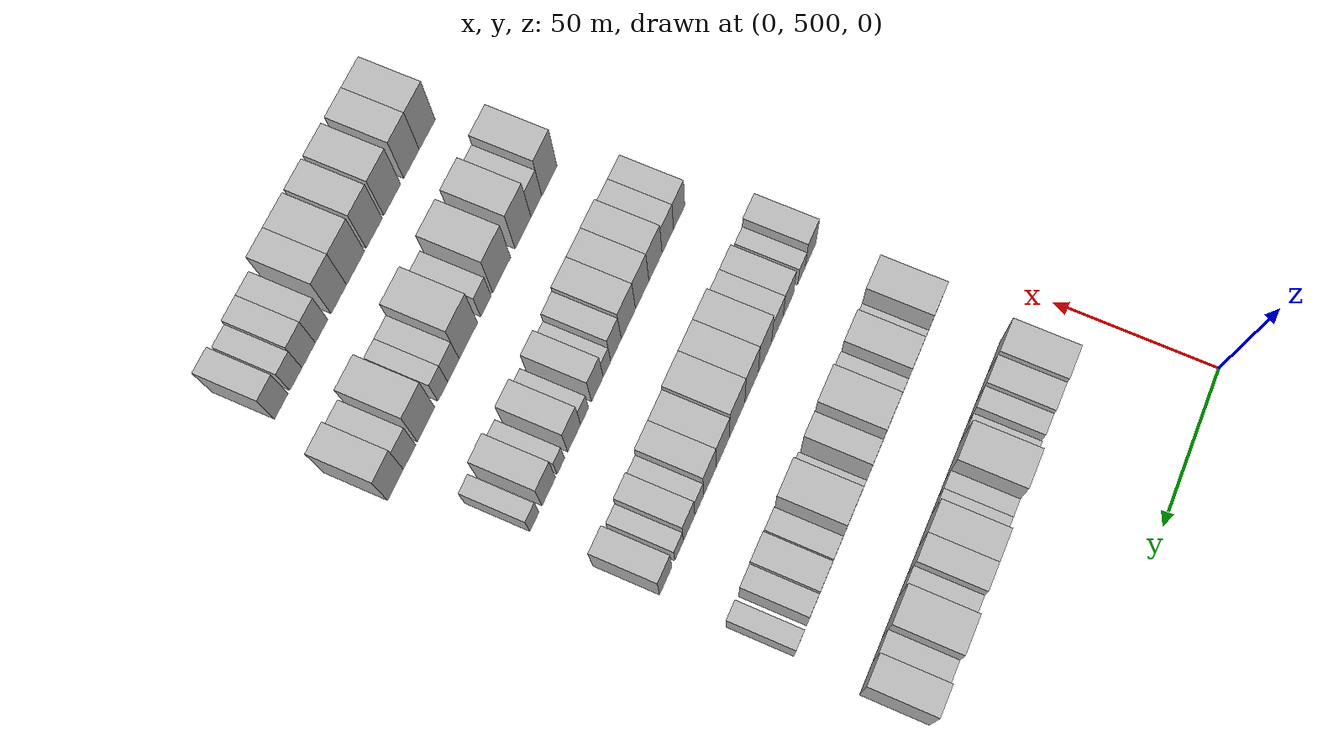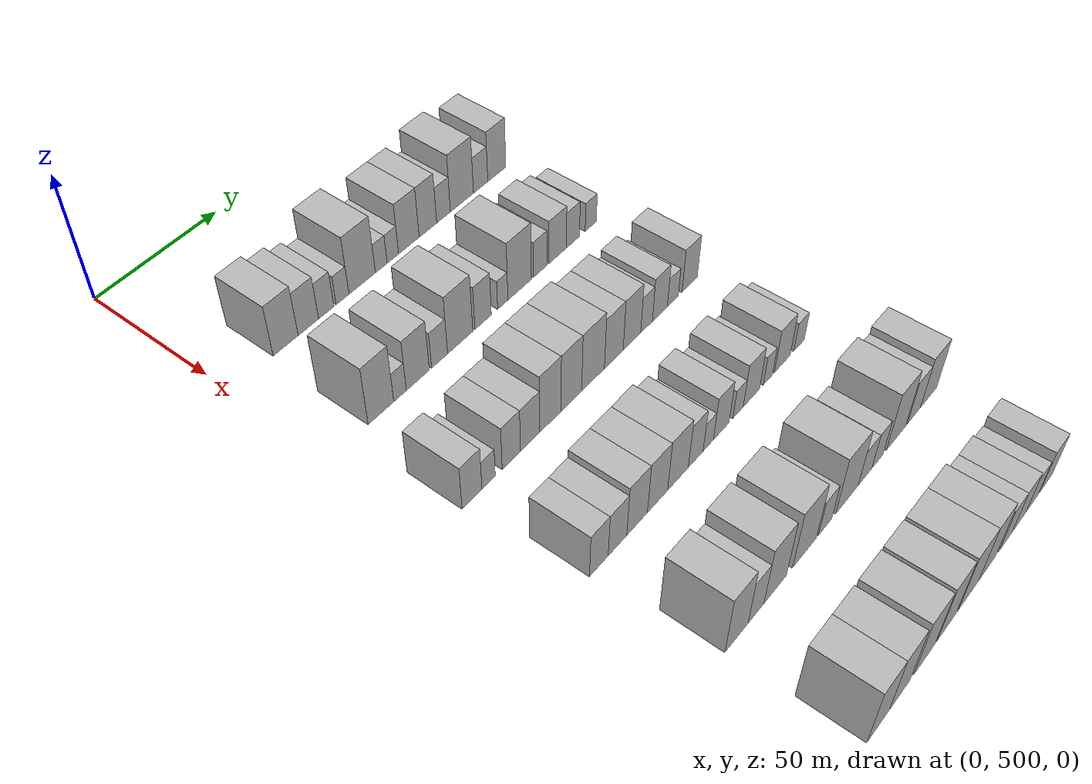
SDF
<sdf version="1.6">
 <world name="default">
  <model name="building_129">
   <static>1</static>
   <pose>50.0000 522.5964 0 0.000000 0.000000 0.000000</pose>
   <link name="link">
    <pose>0 0 10.50 0 0 0</pose>
    <collision name="collision"><geometry><box><size>20.0000 10.4210 21.0000</size></box></geometry></collision>
    <visual name="visual">
     <cast_shadows>0</cast_shadows>
     <geometry><box><size>20.0000 10.4210 21.0000</size></box></geometry>
     <material>
      <script>
       <uri>model://HANNAS_wall/materials/scripts</uri>
       <uri>model://HANNAS_wall/materials/textures</uri>
       <name>vrc/HANNAS_wall</name>
      </script>
     </material>
    </visual>
   </link>
  </model>
  <model name="building_130">
   <static>1</static>
   <pose>50.0000 532.1601 0 0.000000 0.000000 0.000000</pose>
   <link name="link">
    <pose>0 0 9.00 0 0 0</pose>
    <collision name="collision"><geometry><box><size>20.0000 8.7064 18.0000</size></box></geometry></collision>
    <visual name="visual">
     <cast_shadows>0</cast_shadows>
     <geometry><box><size>20.0000 8.7064 18.0000</size></box></geometry>
     <material>
      <script>
       <uri>model://HANNAS_wall/materials/scripts</uri>
       <uri>model://HANNAS_wall/materials/textures</uri>
       <name>vrc/HANNAS_wall</name>
      </script>
     </material>
    </visual>
   </link>
  </model>
  <model name="building_131">
   <static>1</static>
   <pose>50.0000 539.8274 0 0.000000 0.000000 0.000000</pose>
   <link name="link">
    <pose>0 0 7.50 0 0 0</pose>
    <collision name="collision"><geometry><box><size>20.0000 6.6281 15.0000</size></box></geometry></collision>
    <visual name="visual">
     <cast_shadows>0</cast_shadows>
     <geometry><box><size>20.0000 6.6281 15.0000</size></box></geometry>
     <material>
      <script>
       <uri>model://HANNAS_wall/materials/scripts</uri>
       <uri>model://HANNAS_wall/materials/textures</uri>
       <name>vrc/HANNAS_wall</name>
      </script>
     </material>
    </visual>
   </link>
  </model>
  <model name="building_132">
   <static>1</static>
   <pose>50.0000 546.9651 0 0.000000 0.000000 0.000000</pose>
   <link name="link">
    <pose>0 0 6.00 0 0 0</pose>
    <collision name="collision"><geometry><box><size>20.0000 5.6472 12.0000</size></box></geometry></collision>
    <visual name="visual">
     <cast_shadows>0</cast_shadows>
     <geometry><box><size>20.0000 5.6472 12.0000</size></box></geometry>
     <material>
      <script>
       <uri>model://HANNAS_wall/materials/scripts</uri>
       <uri>model://HANNAS_wall/materials/textures</uri>
       <name>vrc/HANNAS_wall</name>
      </script>
     </material>
    </visual>
   </link>
  </model>
  <model name="building_133">
   <static>1</static>
   <pose>50.0000 555.7338 0 0.000000 0.000000 0.000000</pose>
   <link name="link">
    <pose>0 0 12.00 0 0 0</pose>
    <collision name="collision"><geometry><box><size>20.0000 11.8901 24.0000</size></box></geometry></collision>
    <visual name="visual">
     <cast_shadows>0</cast_shadows>
     <geometry><box><size>20.0000 11.8901 24.0000</size></box></geometry>
     <material>
      <script>
       <uri>model://HANNAS_wall/materials/scripts</uri>
       <uri>model://HANNAS_wall/materials/textures</uri>
       <name>vrc/HANNAS_wall</name>
      </script>
     </material>
    </visual>
   </link>
  </model>
  <model name="building_134">
   <static>1</static>
   <pose>50.0000 564.3803 0 0.000000 0.000000 0.000000</pose>
   <link name="link">
    <pose>0 0 6.00 0 0 0</pose>
    <collision name="collision"><geometry><box><size>20.0000 5.4030 12.0000</size></box></geometry></collision>
    <visual name="visual">
     <cast_shadows>0</cast_shadows>
     <geometry><box><size>20.0000 5.4030 12.0000</size></box></geometry>
     <material>
      <script>
       <uri>model://HANNAS_wall/materials/scripts</uri>
       <uri>model://HANNAS_wall/materials/textures</uri>
       <name>vrc/HANNAS_wall</name>
      </script>
     </material>
    </visual>
   </link>
  </model>
  <model name="building_135">
   <static>1</static>
   <pose>50.0000 569.7491 0 0.000000 0.000000 0.000000</pose>
   <link name="link">
    <pose>0 0 6.00 0 0 0</pose>
    <collision name="collision"><geometry><box><size>20.0000 5.3346 12.0000</size></box></geometry></collision>
    <visual name="visual">
     <cast_shadows>0</cast_shadows>
     <geometry><box><size>20.0000 5.3346 12.0000</size></box></geometry>
     <material>
      <script>
       <uri>model://HANNAS_wall/materials/scripts</uri>
       <uri>model://HANNAS_wall/materials/textures</uri>
       <name>vrc/HANNAS_wall</name>
      </script>
     </material>
    </visual>
   </link>
  </model>
  <model name="building_136">
   <static>1</static>
   <pose>50.0000 577.2828 0 0.000000 0.000000 0.000000</pose>
   <link name="link">
    <pose>0 0 10.50 0 0 0</pose>
    <collision name="collision"><geometry><box><size>20.0000 9.7327 21.0000</size></box></geometry></collision>
    <visual name="visual">
     <cast_shadows>0</cast_shadows>
     <geometry><box><size>20.0000 9.7327 21.0000</size></box></geometry>
     <material>
      <script>
       <uri>model://HANNAS_wall/materials/scripts</uri>
       <uri>model://HANNAS_wall/materials/textures</uri>
       <name>vrc/HANNAS_wall</name>
      </script>
     </material>
    </visual>
   </link>
  </model>
  <model name="building_137">
   <static>1</static>
   <pose>50.0000 586.3870 0 0.000000 0.000000 0.000000</pose>
   <link name="link">
    <pose>0 0 10.50 0 0 0</pose>
    <collision name="collision"><geometry><box><size>20.0000 8.4757 21.0000</size></box></geometry></collision>
    <visual name="visual">
     <cast_shadows>0</cast_shadows>
     <geometry><box><size>20.0000 8.4757 21.0000</size></box></geometry>
     <material>
      <script>
       <uri>model://HANNAS_wall/materials/scripts</uri>
       <uri>model://HANNAS_wall/materials/textures</uri>
       <name>vrc/HANNAS_wall</name>
      </script>
     </material>
    </visual>
   </link>
  </model>
  <model name="building_138">
   <static>1</static>
   <pose>50.0000 594.0049 0 0.000000 0.000000 0.000000</pose>
   <link name="link">
    <pose>0 0 7.50 0 0 0</pose>
    <collision name="collision"><geometry><box><size>20.0000 6.7601 15.0000</size></box></geometry></collision>
    <visual name="visual">
     <cast_shadows>0</cast_shadows>
     <geometry><box><size>20.0000 6.7601 15.0000</size></box></geometry>
     <material>
      <script>
       <uri>model://HANNAS_wall/materials/scripts</uri>
       <uri>model://HANNAS_wall/materials/textures</uri>
       <name>vrc/HANNAS_wall</name>
      </script>
     </material>
    </visual>
   </link>
  </model>
  <model name="building_139">
   <static>1</static>
   <pose>50.0000 603.1863 0 0.000000 0.000000 0.000000</pose>
   <link name="link">
    <pose>0 0 12.00 0 0 0</pose>
    <collision name="collision"><geometry><box><size>20.0000 11.6027 24.0000</size></box></geometry></collision>
    <visual name="visual">
     <cast_shadows>0</cast_shadows>
     <geometry><box><size>20.0000 11.6027 24.0000</size></box></geometry>
     <material>
      <script>
       <uri>model://HANNAS_wall/materials/scripts</uri>
       <uri>model://HANNAS_wall/materials/textures</uri>
       <name>vrc/HANNAS_wall</name>
      </script>
     </material>
    </visual>
   </link>
  </model>
  <model name="building_140">
   <static>1</static>
   <pose>50.0000 612.6510 0 0.000000 0.000000 0.000000</pose>
   <link name="link">
    <pose>0 0 7.50 0 0 0</pose>
    <collision name="collision"><geometry><box><size>20.0000 7.3268 15.0000</size></box></geometry></collision>
    <visual name="visual">
     <cast_shadows>0</cast_shadows>
     <geometry><box><size>20.0000 7.3268 15.0000</size></box></geometry>
     <material>
      <script>
       <uri>model://HANNAS_wall/materials/scripts</uri>
       <uri>model://HANNAS_wall/materials/textures</uri>
       <name>vrc/HANNAS_wall</name>
      </script>
     </material>
    </visual>
   </link>
  </model>
  <model name="building_141">
   <static>1</static>
   <pose>50.0000 621.0267 0 0.000000 0.000000 0.000000</pose>
   <link name="link">
    <pose>0 0 10.50 0 0 0</pose>
    <collision name="collision"><geometry><box><size>20.0000 9.4244 21.0000</size></box></geometry></collision>
    <visual name="visual">
     <cast_shadows>0</cast_shadows>
     <geometry><box><size>20.0000 9.4244 21.0000</size></box></geometry>
     <material>
      <script>
       <uri>model://HANNAS_wall/materials/scripts</uri>
       <uri>model://HANNAS_wall/materials/textures</uri>
       <name>vrc/HANNAS_wall</name>
      </script>
     </material>
    </visual>
   </link>
  </model>
  <model name="building_266">
   <static>1</static>
   <pose>90.0000 521.1569 0 0.000000 0.000000 0.000000</pose>
   <link name="link">
    <pose>0 0 12.00 0 0 0</pose>
    <collision name="collision"><geometry><box><size>20.0000 10.7513 24.0000</size></box></geometry></collision>
    <visual name="visual">
     <cast_shadows>0</cast_shadows>
     <geometry><box><size>20.0000 10.7513 24.0000</size></box></geometry>
     <material>
      <script>
       <uri>model://HANNAS_wall/materials/scripts</uri>
       <uri>model://HANNAS_wall/materials/textures</uri>
       <name>vrc/HANNAS_wall</name>
      </script>
     </material>
    </visual>
   </link>
  </model>
  <model name="building_267">
   <static>1</static>
   <pose>90.0000 529.2352 0 0.000000 0.000000 0.000000</pose>
   <link name="link">
    <pose>0 0 6.00 0 0 0</pose>
    <collision name="collision"><geometry><box><size>20.0000 5.4053 12.0000</size></box></geometry></collision>
    <visual name="visual">
     <cast_shadows>0</cast_shadows>
     <geometry><box><size>20.0000 5.4053 12.0000</size></box></geometry>
     <material>
      <script>
       <uri>model://HANNAS_wall/materials/scripts</uri>
       <uri>model://HANNAS_wall/materials/textures</uri>
       <name>vrc/HANNAS_wall</name>
      </script>
     </material>
    </visual>
   </link>
  </model>
  <model name="building_268">
   <static>1</static>
   <pose>90.0000 536.9468 0 0.000000 0.000000 0.000000</pose>
   <link name="link">
    <pose>0 0 10.50 0 0 0</pose>
    <collision name="collision"><geometry><box><size>20.0000 10.0177 21.0000</size></box></geometry></collision>
    <visual name="visual">
     <cast_shadows>0</cast_shadows>
     <geometry><box><size>20.0000 10.0177 21.0000</size></box></geometry>
     <material>
      <script>
       <uri>model://HANNAS_wall/materials/scripts</uri>
       <uri>model://HANNAS_wall/materials/textures</uri>
       <name>vrc/HANNAS_wall</name>
      </script>
     </material>
    </visual>
   </link>
  </model>
  <model name="building_269">
   <static>1</static>
   <pose>90.0000 546.5263 0 0.000000 0.000000 0.000000</pose>
   <link name="link">
    <pose>0 0 7.50 0 0 0</pose>
    <collision name="collision"><geometry><box><size>20.0000 7.1413 15.0000</size></box></geometry></collision>
    <visual name="visual">
     <cast_shadows>0</cast_shadows>
     <geometry><box><size>20.0000 7.1413 15.0000</size></box></geometry>
     <material>
      <script>
       <uri>model://HANNAS_wall/materials/scripts</uri>
       <uri>model://HANNAS_wall/materials/textures</uri>
       <name>vrc/HANNAS_wall</name>
      </script>
     </material>
    </visual>
   </link>
  </model>
  <model name="building_270">
   <static>1</static>
   <pose>90.0000 555.8581 0 0.000000 0.000000 0.000000</pose>
   <link name="link">
    <pose>0 0 12.00 0 0 0</pose>
    <collision name="collision"><geometry><box><size>20.0000 11.5224 24.0000</size></box></geometry></collision>
    <visual name="visual">
     <cast_shadows>0</cast_shadows>
     <geometry><box><size>20.0000 11.5224 24.0000</size></box></geometry>
     <material>
      <script>
       <uri>model://HANNAS_wall/materials/scripts</uri>
       <uri>model://HANNAS_wall/materials/textures</uri>
       <name>vrc/HANNAS_wall</name>
      </script>
     </material>
    </visual>
   </link>
  </model>
  <model name="building_271">
   <static>1</static>
   <pose>90.0000 566.4683 0 0.000000 0.000000 0.000000</pose>
   <link name="link">
    <pose>0 0 9.00 0 0 0</pose>
    <collision name="collision"><geometry><box><size>20.0000 7.6981 18.0000</size></box></geometry></collision>
    <visual name="visual">
     <cast_shadows>0</cast_shadows>
     <geometry><box><size>20.0000 7.6981 18.0000</size></box></geometry>
     <material>
      <script>
       <uri>model://HANNAS_wall/materials/scripts</uri>
       <uri>model://HANNAS_wall/materials/textures</uri>
       <name>vrc/HANNAS_wall</name>
      </script>
     </material>
    </visual>
   </link>
  </model>
  <model name="building_272">
   <static>1</static>
   <pose>90.0000 575.7840 0 0.000000 0.000000 0.000000</pose>
   <link name="link">
    <pose>0 0 6.00 0 0 0</pose>
    <collision name="collision"><geometry><box><size>20.0000 4.9334 12.0000</size></box></geometry></collision>
    <visual name="visual">
     <cast_shadows>0</cast_shadows>
     <geometry><box><size>20.0000 4.9334 12.0000</size></box></geometry>
     <material>
      <script>
       <uri>model://HANNAS_wall/materials/scripts</uri>
       <uri>model://HANNAS_wall/materials/textures</uri>
       <name>vrc/HANNAS_wall</name>
      </script>
     </material>
    </visual>
   </link>
  </model>
  <model name="building_273">
   <static>1</static>
   <pose>90.0000 583.9877 0 0.000000 0.000000 0.000000</pose>
   <link name="link">
    <pose>0 0 12.00 0 0 0</pose>
    <collision name="collision"><geometry><box><size>20.0000 11.4740 24.0000</size></box></geometry></collision>
    <visual name="visual">
     <cast_shadows>0</cast_shadows>
     <geometry><box><size>20.0000 11.4740 24.0000</size></box></geometry>
     <material>
      <script>
       <uri>model://HANNAS_wall/materials/scripts</uri>
       <uri>model://HANNAS_wall/materials/textures</uri>
       <name>vrc/HANNAS_wall</name>
      </script>
     </material>
    </visual>
   </link>
  </model>
  <model name="building_274">
   <static>1</static>
   <pose>90.0000 594.1394 0 0.000000 0.000000 0.000000</pose>
   <link name="link">
    <pose>0 0 7.50 0 0 0</pose>
    <collision name="collision"><geometry><box><size>20.0000 6.8293 15.0000</size></box></geometry></collision>
    <visual name="visual">
     <cast_shadows>0</cast_shadows>
     <geometry><box><size>20.0000 6.8293 15.0000</size></box></geometry>
     <material>
      <script>
       <uri>model://HANNAS_wall/materials/scripts</uri>
       <uri>model://HANNAS_wall/materials/textures</uri>
       <name>vrc/HANNAS_wall</name>
      </script>
     </material>
    </visual>
   </link>
  </model>
  <model name="building_275">
   <static>1</static>
   <pose>90.0000 603.0049 0 0.000000 0.000000 0.000000</pose>
   <link name="link">
    <pose>0 0 9.00 0 0 0</pose>
    <collision name="collision"><geometry><box><size>20.0000 8.9017 18.0000</size></box></geometry></collision>
    <visual name="visual">
     <cast_shadows>0</cast_shadows>
     <geometry><box><size>20.0000 8.9017 18.0000</size></box></geometry>
     <material>
      <script>
       <uri>model://HANNAS_wall/materials/scripts</uri>
       <uri>model://HANNAS_wall/materials/textures</uri>
       <name>vrc/HANNAS_wall</name>
      </script>
     </material>
    </visual>
   </link>
  </model>
  <model name="building_276">
   <static>1</static>
   <pose>90.0000 610.8810 0 0.000000 0.000000 0.000000</pose>
   <link name="link">
    <pose>0 0 7.50 0 0 0</pose>
    <collision name="collision"><geometry><box><size>20.0000 6.8504 15.0000</size></box></geometry></collision>
    <visual name="visual">
     <cast_shadows>0</cast_shadows>
     <geometry><box><size>20.0000 6.8504 15.0000</size></box></geometry>
     <material>
      <script>
       <uri>model://HANNAS_wall/materials/scripts</uri>
       <uri>model://HANNAS_wall/materials/textures</uri>
       <name>vrc/HANNAS_wall</name>
      </script>
     </material>
    </visual>
   </link>
  </model>
  <model name="building_277">
   <static>1</static>
   <pose>90.0000 620.2972 0 0.000000 0.000000 0.000000</pose>
   <link name="link">
    <pose>0 0 6.00 0 0 0</pose>
    <collision name="collision"><geometry><box><size>20.0000 5.9821 12.0000</size></box></geometry></collision>
    <visual name="visual">
     <cast_shadows>0</cast_shadows>
     <geometry><box><size>20.0000 5.9821 12.0000</size></box></geometry>
     <material>
      <script>
       <uri>model://HANNAS_wall/materials/scripts</uri>
       <uri>model://HANNAS_wall/materials/textures</uri>
       <name>vrc/HANNAS_wall</name>
      </script>
     </material>
    </visual>
   </link>
  </model>
  <model name="building_394">
   <static>1</static>
   <pose>130.0000 514.3373 0 0.000000 0.000000 0.000000</pose>
   <link name="link">
    <pose>0 0 9.00 0 0 0</pose>
    <collision name="collision"><geometry><box><size>20.0000 8.3489 18.0000</size></box></geometry></collision>
    <visual name="visual">
     <cast_shadows>0</cast_shadows>
     <geometry><box><size>20.0000 8.3489 18.0000</size></box></geometry>
     <material>
      <script>
       <uri>model://HANNAS_wall/materials/scripts</uri>
       <uri>model://HANNAS_wall/materials/textures</uri>
       <name>vrc/HANNAS_wall</name>
      </script>
     </material>
    </visual>
   </link>
  </model>
  <model name="building_395">
   <static>1</static>
   <pose>130.0000 521.3442 0 0.000000 0.000000 0.000000</pose>
   <link name="link">
    <pose>0 0 6.00 0 0 0</pose>
    <collision name="collision"><geometry><box><size>20.0000 5.6648 12.0000</size></box></geometry></collision>
    <visual name="visual">
     <cast_shadows>0</cast_shadows>
     <geometry><box><size>20.0000 5.6648 12.0000</size></box></geometry>
     <material>
      <script>
       <uri>model://HANNAS_wall/materials/scripts</uri>
       <uri>model://HANNAS_wall/materials/textures</uri>
       <name>vrc/HANNAS_wall</name>
      </script>
     </material>
    </visual>
   </link>
  </model>
  <model name="building_396">
   <static>1</static>
   <pose>130.0000 531.1818 0 0.000000 0.000000 0.000000</pose>
   <link name="link">
    <pose>0 0 9.00 0 0 0</pose>
    <collision name="collision"><geometry><box><size>20.0000 8.0105 18.0000</size></box></geometry></collision>
    <visual name="visual">
     <cast_shadows>0</cast_shadows>
     <geometry><box><size>20.0000 8.0105 18.0000</size></box></geometry>
     <material>
      <script>
       <uri>model://HANNAS_wall/materials/scripts</uri>
       <uri>model://HANNAS_wall/materials/textures</uri>
       <name>vrc/HANNAS_wall</name>
      </script>
     </material>
    </visual>
   </link>
  </model>
  <model name="building_397">
   <static>1</static>
   <pose>130.0000 539.4941 0 0.000000 0.000000 0.000000</pose>
   <link name="link">
    <pose>0 0 9.00 0 0 0</pose>
    <collision name="collision"><geometry><box><size>20.0000 8.6140 18.0000</size></box></geometry></collision>
    <visual name="visual">
     <cast_shadows>0</cast_shadows>
     <geometry><box><size>20.0000 8.6140 18.0000</size></box></geometry>
     <material>
      <script>
       <uri>model://HANNAS_wall/materials/scripts</uri>
       <uri>model://HANNAS_wall/materials/textures</uri>
       <name>vrc/HANNAS_wall</name>
      </script>
     </material>
    </visual>
   </link>
  </model>
  <model name="building_398">
   <static>1</static>
   <pose>130.0000 548.6491 0 0.000000 0.000000 0.000000</pose>
   <link name="link">
    <pose>0 0 12.00 0 0 0</pose>
    <collision name="collision"><geometry><box><size>20.0000 9.6960 24.0000</size></box></geometry></collision>
    <visual name="visual">
     <cast_shadows>0</cast_shadows>
     <geometry><box><size>20.0000 9.6960 24.0000</size></box></geometry>
     <material>
      <script>
       <uri>model://HANNAS_wall/materials/scripts</uri>
       <uri>model://HANNAS_wall/materials/textures</uri>
       <name>vrc/HANNAS_wall</name>
      </script>
     </material>
    </visual>
   </link>
  </model>
  <model name="building_399">
   <static>1</static>
   <pose>130.0000 558.3815 0 0.000000 0.000000 0.000000</pose>
   <link name="link">
    <pose>0 0 12.00 0 0 0</pose>
    <collision name="collision"><geometry><box><size>20.0000 9.7688 24.0000</size></box></geometry></collision>
    <visual name="visual">
     <cast_shadows>0</cast_shadows>
     <geometry><box><size>20.0000 9.7688 24.0000</size></box></geometry>
     <material>
      <script>
       <uri>model://HANNAS_wall/materials/scripts</uri>
       <uri>model://HANNAS_wall/materials/textures</uri>
       <name>vrc/HANNAS_wall</name>
      </script>
     </material>
    </visual>
   </link>
  </model>
  <model name="building_400">
   <static>1</static>
   <pose>130.0000 568.7671 0 0.000000 0.000000 0.000000</pose>
   <link name="link">
    <pose>0 0 12.00 0 0 0</pose>
    <collision name="collision"><geometry><box><size>20.0000 11.0024 24.0000</size></box></geometry></collision>
    <visual name="visual">
     <cast_shadows>0</cast_shadows>
     <geometry><box><size>20.0000 11.0024 24.0000</size></box></geometry>
     <material>
      <script>
       <uri>model://HANNAS_wall/materials/scripts</uri>
       <uri>model://HANNAS_wall/materials/textures</uri>
       <name>vrc/HANNAS_wall</name>
      </script>
     </material>
    </visual>
   </link>
  </model>
  <model name="building_401">
   <static>1</static>
   <pose>130.0000 578.9330 0 0.000000 0.000000 0.000000</pose>
   <link name="link">
    <pose>0 0 10.50 0 0 0</pose>
    <collision name="collision"><geometry><box><size>20.0000 9.3294 21.0000</size></box></geometry></collision>
    <visual name="visual">
     <cast_shadows>0</cast_shadows>
     <geometry><box><size>20.0000 9.3294 21.0000</size></box></geometry>
     <material>
      <script>
       <uri>model://HANNAS_wall/materials/scripts</uri>
       <uri>model://HANNAS_wall/materials/textures</uri>
       <name>vrc/HANNAS_wall</name>
      </script>
     </material>
    </visual>
   </link>
  </model>
  <model name="building_402">
   <static>1</static>
   <pose>130.0000 588.0219 0 0.000000 0.000000 0.000000</pose>
   <link name="link">
    <pose>0 0 10.50 0 0 0</pose>
    <collision name="collision"><geometry><box><size>20.0000 8.8484 21.0000</size></box></geometry></collision>
    <visual name="visual">
     <cast_shadows>0</cast_shadows>
     <geometry><box><size>20.0000 8.8484 21.0000</size></box></geometry>
     <material>
      <script>
       <uri>model://HANNAS_wall/materials/scripts</uri>
       <uri>model://HANNAS_wall/materials/textures</uri>
       <name>vrc/HANNAS_wall</name>
      </script>
     </material>
    </visual>
   </link>
  </model>
  <model name="building_403">
   <static>1</static>
   <pose>130.0000 595.4731 0 0.000000 0.000000 0.000000</pose>
   <link name="link">
    <pose>0 0 7.50 0 0 0</pose>
    <collision name="collision"><geometry><box><size>20.0000 6.0540 15.0000</size></box></geometry></collision>
    <visual name="visual">
     <cast_shadows>0</cast_shadows>
     <geometry><box><size>20.0000 6.0540 15.0000</size></box></geometry>
     <material>
      <script>
       <uri>model://HANNAS_wall/materials/scripts</uri>
       <uri>model://HANNAS_wall/materials/textures</uri>
       <name>vrc/HANNAS_wall</name>
      </script>
     </material>
    </visual>
   </link>
  </model>
  <model name="building_404">
   <static>1</static>
   <pose>130.0000 602.4187 0 0.000000 0.000000 0.000000</pose>
   <link name="link">
    <pose>0 0 9.00 0 0 0</pose>
    <collision name="collision"><geometry><box><size>20.0000 7.8373 18.0000</size></box></geometry></collision>
    <visual name="visual">
     <cast_shadows>0</cast_shadows>
     <geometry><box><size>20.0000 7.8373 18.0000</size></box></geometry>
     <material>
      <script>
       <uri>model://HANNAS_wall/materials/scripts</uri>
       <uri>model://HANNAS_wall/materials/textures</uri>
       <name>vrc/HANNAS_wall</name>
      </script>
     </material>
    </visual>
   </link>
  </model>
  <model name="building_405">
   <static>1</static>
   <pose>130.0000 609.2713 0 0.000000 0.000000 0.000000</pose>
   <link name="link">
    <pose>0 0 6.00 0 0 0</pose>
    <collision name="collision"><geometry><box><size>20.0000 5.8680 12.0000</size></box></geometry></collision>
    <visual name="visual">
     <cast_shadows>0</cast_shadows>
     <geometry><box><size>20.0000 5.8680 12.0000</size></box></geometry>
     <material>
      <script>
       <uri>model://HANNAS_wall/materials/scripts</uri>
       <uri>model://HANNAS_wall/materials/textures</uri>
       <name>vrc/HANNAS_wall</name>
      </script>
     </material>
    </visual>
   </link>
  </model>
  <model name="building_406">
   <static>1</static>
   <pose>130.0000 618.3236 0 0.000000 0.000000 0.000000</pose>
   <link name="link">
    <pose>0 0 9.00 0 0 0</pose>
    <collision name="collision"><geometry><box><size>20.0000 8.2365 18.0000</size></box></geometry></collision>
    <visual name="visual">
     <cast_shadows>0</cast_shadows>
     <geometry><box><size>20.0000 8.2365 18.0000</size></box></geometry>
     <material>
      <script>
       <uri>model://HANNAS_wall/materials/scripts</uri>
       <uri>model://HANNAS_wall/materials/textures</uri>
       <name>vrc/HANNAS_wall</name>
      </script>
     </material>
    </visual>
   </link>
  </model>
  <model name="building_519">
   <static>1</static>
   <pose>170.0000 518.5023 0 0.000000 0.000000 0.000000</pose>
   <link name="link">
    <pose>0 0 9.00 0 0 0</pose>
    <collision name="collision"><geometry><box><size>20.0000 8.1329 18.0000</size></box></geometry></collision>
    <visual name="visual">
     <cast_shadows>0</cast_shadows>
     <geometry><box><size>20.0000 8.1329 18.0000</size></box></geometry>
     <material>
      <script>
       <uri>model://HANNAS_wall/materials/scripts</uri>
       <uri>model://HANNAS_wall/materials/textures</uri>
       <name>vrc/HANNAS_wall</name>
      </script>
     </material>
    </visual>
   </link>
  </model>
  <model name="building_520">
   <static>1</static>
   <pose>170.0000 526.7108 0 0.000000 0.000000 0.000000</pose>
   <link name="link">
    <pose>0 0 9.00 0 0 0</pose>
    <collision name="collision"><geometry><box><size>20.0000 8.2840 18.0000</size></box></geometry></collision>
    <visual name="visual">
     <cast_shadows>0</cast_shadows>
     <geometry><box><size>20.0000 8.2840 18.0000</size></box></geometry>
     <material>
      <script>
       <uri>model://HANNAS_wall/materials/scripts</uri>
       <uri>model://HANNAS_wall/materials/textures</uri>
       <name>vrc/HANNAS_wall</name>
      </script>
     </material>
    </visual>
   </link>
  </model>
  <model name="building_521">
   <static>1</static>
   <pose>170.0000 535.5536 0 0.000000 0.000000 0.000000</pose>
   <link name="link">
    <pose>0 0 10.50 0 0 0</pose>
    <collision name="collision"><geometry><box><size>20.0000 9.4016 21.0000</size></box></geometry></collision>
    <visual name="visual">
     <cast_shadows>0</cast_shadows>
     <geometry><box><size>20.0000 9.4016 21.0000</size></box></geometry>
     <material>
      <script>
       <uri>model://HANNAS_wall/materials/scripts</uri>
       <uri>model://HANNAS_wall/materials/textures</uri>
       <name>vrc/HANNAS_wall</name>
      </script>
     </material>
    </visual>
   </link>
  </model>
  <model name="building_522">
   <static>1</static>
   <pose>170.0000 544.9764 0 0.000000 0.000000 0.000000</pose>
   <link name="link">
    <pose>0 0 10.50 0 0 0</pose>
    <collision name="collision"><geometry><box><size>20.0000 9.4442 21.0000</size></box></geometry></collision>
    <visual name="visual">
     <cast_shadows>0</cast_shadows>
     <geometry><box><size>20.0000 9.4442 21.0000</size></box></geometry>
     <material>
      <script>
       <uri>model://HANNAS_wall/materials/scripts</uri>
       <uri>model://HANNAS_wall/materials/textures</uri>
       <name>vrc/HANNAS_wall</name>
      </script>
     </material>
    </visual>
   </link>
  </model>
  <model name="building_523">
   <static>1</static>
   <pose>170.0000 554.6523 0 0.000000 0.000000 0.000000</pose>
   <link name="link">
    <pose>0 0 10.50 0 0 0</pose>
    <collision name="collision"><geometry><box><size>20.0000 9.9075 21.0000</size></box></geometry></collision>
    <visual name="visual">
     <cast_shadows>0</cast_shadows>
     <geometry><box><size>20.0000 9.9075 21.0000</size></box></geometry>
     <material>
      <script>
       <uri>model://HANNAS_wall/materials/scripts</uri>
       <uri>model://HANNAS_wall/materials/textures</uri>
       <name>vrc/HANNAS_wall</name>
      </script>
     </material>
    </visual>
   </link>
  </model>
  <model name="building_524">
   <static>1</static>
   <pose>170.0000 563.2375 0 0.000000 0.000000 0.000000</pose>
   <link name="link">
    <pose>0 0 9.00 0 0 0</pose>
    <collision name="collision"><geometry><box><size>20.0000 7.2630 18.0000</size></box></geometry></collision>
    <visual name="visual">
     <cast_shadows>0</cast_shadows>
     <geometry><box><size>20.0000 7.2630 18.0000</size></box></geometry>
     <material>
      <script>
       <uri>model://HANNAS_wall/materials/scripts</uri>
       <uri>model://HANNAS_wall/materials/textures</uri>
       <name>vrc/HANNAS_wall</name>
      </script>
     </material>
    </visual>
   </link>
  </model>
  <model name="building_525">
   <static>1</static>
   <pose>170.0000 569.4408 0 0.000000 0.000000 0.000000</pose>
   <link name="link">
    <pose>0 0 6.00 0 0 0</pose>
    <collision name="collision"><geometry><box><size>20.0000 5.1435 12.0000</size></box></geometry></collision>
    <visual name="visual">
     <cast_shadows>0</cast_shadows>
     <geometry><box><size>20.0000 5.1435 12.0000</size></box></geometry>
     <material>
      <script>
       <uri>model://HANNAS_wall/materials/scripts</uri>
       <uri>model://HANNAS_wall/materials/textures</uri>
       <name>vrc/HANNAS_wall</name>
      </script>
     </material>
    </visual>
   </link>
  </model>
  <model name="building_526">
   <static>1</static>
   <pose>170.0000 575.9806 0 0.000000 0.000000 0.000000</pose>
   <link name="link">
    <pose>0 0 9.00 0 0 0</pose>
    <collision name="collision"><geometry><box><size>20.0000 7.9362 18.0000</size></box></geometry></collision>
    <visual name="visual">
     <cast_shadows>0</cast_shadows>
     <geometry><box><size>20.0000 7.9362 18.0000</size></box></geometry>
     <material>
      <script>
       <uri>model://HANNAS_wall/materials/scripts</uri>
       <uri>model://HANNAS_wall/materials/textures</uri>
       <name>vrc/HANNAS_wall</name>
      </script>
     </material>
    </visual>
   </link>
  </model>
  <model name="building_527">
   <static>1</static>
   <pose>170.0000 584.6188 0 0.000000 0.000000 0.000000</pose>
   <link name="link">
    <pose>0 0 6.00 0 0 0</pose>
    <collision name="collision"><geometry><box><size>20.0000 5.3402 12.0000</size></box></geometry></collision>
    <visual name="visual">
     <cast_shadows>0</cast_shadows>
     <geometry><box><size>20.0000 5.3402 12.0000</size></box></geometry>
     <material>
      <script>
       <uri>model://HANNAS_wall/materials/scripts</uri>
       <uri>model://HANNAS_wall/materials/textures</uri>
       <name>vrc/HANNAS_wall</name>
      </script>
     </material>
    </visual>
   </link>
  </model>
  <model name="building_528">
   <static>1</static>
   <pose>170.0000 591.6174 0 0.000000 0.000000 0.000000</pose>
   <link name="link">
    <pose>0 0 9.00 0 0 0</pose>
    <collision name="collision"><geometry><box><size>20.0000 8.6572 18.0000</size></box></geometry></collision>
    <visual name="visual">
     <cast_shadows>0</cast_shadows>
     <geometry><box><size>20.0000 8.6572 18.0000</size></box></geometry>
     <material>
      <script>
       <uri>model://HANNAS_wall/materials/scripts</uri>
       <uri>model://HANNAS_wall/materials/textures</uri>
       <name>vrc/HANNAS_wall</name>
      </script>
     </material>
    </visual>
   </link>
  </model>
  <model name="building_529">
   <static>1</static>
   <pose>170.0000 600.4553 0 0.000000 0.000000 0.000000</pose>
   <link name="link">
    <pose>0 0 6.00 0 0 0</pose>
    <collision name="collision"><geometry><box><size>20.0000 5.0186 12.0000</size></box></geometry></collision>
    <visual name="visual">
     <cast_shadows>0</cast_shadows>
     <geometry><box><size>20.0000 5.0186 12.0000</size></box></geometry>
     <material>
      <script>
       <uri>model://HANNAS_wall/materials/scripts</uri>
       <uri>model://HANNAS_wall/materials/textures</uri>
       <name>vrc/HANNAS_wall</name>
      </script>
     </material>
    </visual>
   </link>
  </model>
  <model name="building_530">
   <static>1</static>
   <pose>170.0000 608.3402 0 0.000000 0.000000 0.000000</pose>
   <link name="link">
    <pose>0 0 9.00 0 0 0</pose>
    <collision name="collision"><geometry><box><size>20.0000 8.7511 18.0000</size></box></geometry></collision>
    <visual name="visual">
     <cast_shadows>0</cast_shadows>
     <geometry><box><size>20.0000 8.7511 18.0000</size></box></geometry>
     <material>
      <script>
       <uri>model://HANNAS_wall/materials/scripts</uri>
       <uri>model://HANNAS_wall/materials/textures</uri>
       <name>vrc/HANNAS_wall</name>
      </script>
     </material>
    </visual>
   </link>
  </model>
  <model name="building_531">
   <static>1</static>
   <pose>170.0000 617.6510 0 0.000000 0.000000 0.000000</pose>
   <link name="link">
    <pose>0 0 6.00 0 0 0</pose>
    <collision name="collision"><geometry><box><size>20.0000 5.8705 12.0000</size></box></geometry></collision>
    <visual name="visual">
     <cast_shadows>0</cast_shadows>
     <geometry><box><size>20.0000 5.8705 12.0000</size></box></geometry>
     <material>
      <script>
       <uri>model://HANNAS_wall/materials/scripts</uri>
       <uri>model://HANNAS_wall/materials/textures</uri>
       <name>vrc/HANNAS_wall</name>
      </script>
     </material>
    </visual>
   </link>
  </model>
  <model name="building_643">
   <static>1</static>
   <pose>210.0000 523.0375 0 0.000000 0.000000 0.000000</pose>
   <link name="link">
    <pose>0 0 12.00 0 0 0</pose>
    <collision name="collision"><geometry><box><size>20.0000 10.5367 24.0000</size></box></geometry></collision>
    <visual name="visual">
     <cast_shadows>0</cast_shadows>
     <geometry><box><size>20.0000 10.5367 24.0000</size></box></geometry>
     <material>
      <script>
       <uri>model://HANNAS_wall/materials/scripts</uri>
       <uri>model://HANNAS_wall/materials/textures</uri>
       <name>vrc/HANNAS_wall</name>
      </script>
     </material>
    </visual>
   </link>
  </model>
  <model name="building_644">
   <static>1</static>
   <pose>210.0000 532.0163 0 0.000000 0.000000 0.000000</pose>
   <link name="link">
    <pose>0 0 9.00 0 0 0</pose>
    <collision name="collision"><geometry><box><size>20.0000 7.4208 18.0000</size></box></geometry></collision>
    <visual name="visual">
     <cast_shadows>0</cast_shadows>
     <geometry><box><size>20.0000 7.4208 18.0000</size></box></geometry>
     <material>
      <script>
       <uri>model://HANNAS_wall/materials/scripts</uri>
       <uri>model://HANNAS_wall/materials/textures</uri>
       <name>vrc/HANNAS_wall</name>
      </script>
     </material>
    </visual>
   </link>
  </model>
  <model name="building_645">
   <static>1</static>
   <pose>210.0000 541.1436 0 0.000000 0.000000 0.000000</pose>
   <link name="link">
    <pose>0 0 12.00 0 0 0</pose>
    <collision name="collision"><geometry><box><size>20.0000 10.8337 24.0000</size></box></geometry></collision>
    <visual name="visual">
     <cast_shadows>0</cast_shadows>
     <geometry><box><size>20.0000 10.8337 24.0000</size></box></geometry>
     <material>
      <script>
       <uri>model://HANNAS_wall/materials/scripts</uri>
       <uri>model://HANNAS_wall/materials/textures</uri>
       <name>vrc/HANNAS_wall</name>
      </script>
     </material>
    </visual>
   </link>
  </model>
  <model name="building_646">
   <static>1</static>
   <pose>210.0000 555.5328 0 0.000000 0.000000 0.000000</pose>
   <link name="link">
    <pose>0 0 12.00 0 0 0</pose>
    <collision name="collision"><geometry><box><size>20.0000 11.9447 24.0000</size></box></geometry></collision>
    <visual name="visual">
     <cast_shadows>0</cast_shadows>
     <geometry><box><size>20.0000 11.9447 24.0000</size></box></geometry>
     <material>
      <script>
       <uri>model://HANNAS_wall/materials/scripts</uri>
       <uri>model://HANNAS_wall/materials/textures</uri>
       <name>vrc/HANNAS_wall</name>
      </script>
     </material>
    </visual>
   </link>
  </model>
  <model name="building_647">
   <static>1</static>
   <pose>210.0000 565.9798 0 0.000000 0.000000 0.000000</pose>
   <link name="link">
    <pose>0 0 7.50 0 0 0</pose>
    <collision name="collision"><geometry><box><size>20.0000 6.9492 15.0000</size></box></geometry></collision>
    <visual name="visual">
     <cast_shadows>0</cast_shadows>
     <geometry><box><size>20.0000 6.9492 15.0000</size></box></geometry>
     <material>
      <script>
       <uri>model://HANNAS_wall/materials/scripts</uri>
       <uri>model://HANNAS_wall/materials/textures</uri>
       <name>vrc/HANNAS_wall</name>
      </script>
     </material>
    </visual>
   </link>
  </model>
  <model name="building_648">
   <static>1</static>
   <pose>210.0000 577.4353 0 0.000000 0.000000 0.000000</pose>
   <link name="link">
    <pose>0 0 12.00 0 0 0</pose>
    <collision name="collision"><geometry><box><size>20.0000 11.9617 24.0000</size></box></geometry></collision>
    <visual name="visual">
     <cast_shadows>0</cast_shadows>
     <geometry><box><size>20.0000 11.9617 24.0000</size></box></geometry>
     <material>
      <script>
       <uri>model://HANNAS_wall/materials/scripts</uri>
       <uri>model://HANNAS_wall/materials/textures</uri>
       <name>vrc/HANNAS_wall</name>
      </script>
     </material>
    </visual>
   </link>
  </model>
  <model name="building_649">
   <static>1</static>
   <pose>210.0000 587.1414 0 0.000000 0.000000 0.000000</pose>
   <link name="link">
    <pose>0 0 7.50 0 0 0</pose>
    <collision name="collision"><geometry><box><size>20.0000 7.4504 15.0000</size></box></geometry></collision>
    <visual name="visual">
     <cast_shadows>0</cast_shadows>
     <geometry><box><size>20.0000 7.4504 15.0000</size></box></geometry>
     <material>
      <script>
       <uri>model://HANNAS_wall/materials/scripts</uri>
       <uri>model://HANNAS_wall/materials/textures</uri>
       <name>vrc/HANNAS_wall</name>
      </script>
     </material>
    </visual>
   </link>
  </model>
  <model name="building_650">
   <static>1</static>
   <pose>210.0000 593.9718 0 0.000000 0.000000 0.000000</pose>
   <link name="link">
    <pose>0 0 7.50 0 0 0</pose>
    <collision name="collision"><geometry><box><size>20.0000 6.2104 15.0000</size></box></geometry></collision>
    <visual name="visual">
     <cast_shadows>0</cast_shadows>
     <geometry><box><size>20.0000 6.2104 15.0000</size></box></geometry>
     <material>
      <script>
       <uri>model://HANNAS_wall/materials/scripts</uri>
       <uri>model://HANNAS_wall/materials/textures</uri>
       <name>vrc/HANNAS_wall</name>
      </script>
     </material>
    </visual>
   </link>
  </model>
  <model name="building_651">
   <static>1</static>
   <pose>210.0000 604.5466 0 0.000000 0.000000 0.000000</pose>
   <link name="link">
    <pose>0 0 12.00 0 0 0</pose>
    <collision name="collision"><geometry><box><size>20.0000 10.9394 24.0000</size></box></geometry></collision>
    <visual name="visual">
     <cast_shadows>0</cast_shadows>
     <geometry><box><size>20.0000 10.9394 24.0000</size></box></geometry>
     <material>
      <script>
       <uri>model://HANNAS_wall/materials/scripts</uri>
       <uri>model://HANNAS_wall/materials/textures</uri>
       <name>vrc/HANNAS_wall</name>
      </script>
     </material>
    </visual>
   </link>
  </model>
  <model name="building_652">
   <static>1</static>
   <pose>210.0000 614.8641 0 0.000000 0.000000 0.000000</pose>
   <link name="link">
    <pose>0 0 9.00 0 0 0</pose>
    <collision name="collision"><geometry><box><size>20.0000 7.6956 18.0000</size></box></geometry></collision>
    <visual name="visual">
     <cast_shadows>0</cast_shadows>
     <geometry><box><size>20.0000 7.6956 18.0000</size></box></geometry>
     <material>
      <script>
       <uri>model://HANNAS_wall/materials/scripts</uri>
       <uri>model://HANNAS_wall/materials/textures</uri>
       <name>vrc/HANNAS_wall</name>
      </script>
     </material>
    </visual>
   </link>
  </model>
  <model name="building_653">
   <static>1</static>
   <pose>210.0000 623.5525 0 0.000000 0.000000 0.000000</pose>
   <link name="link">
    <pose>0 0 10.50 0 0 0</pose>
    <collision name="collision"><geometry><box><size>20.0000 9.6813 21.0000</size></box></geometry></collision>
    <visual name="visual">
     <cast_shadows>0</cast_shadows>
     <geometry><box><size>20.0000 9.6813 21.0000</size></box></geometry>
     <material>
      <script>
       <uri>model://HANNAS_wall/materials/scripts</uri>
       <uri>model://HANNAS_wall/materials/textures</uri>
       <name>vrc/HANNAS_wall</name>
      </script>
     </material>
    </visual>
   </link>
  </model>
  <model name="building_780">
   <static>1</static>
   <pose>250.0000 523.8489 0 0.000000 0.000000 0.000000</pose>
   <link name="link">
    <pose>0 0 12.00 0 0 0</pose>
    <collision name="collision"><geometry><box><size>20.0000 10.7249 24.0000</size></box></geometry></collision>
    <visual name="visual">
     <cast_shadows>0</cast_shadows>
     <geometry><box><size>20.0000 10.7249 24.0000</size></box></geometry>
     <material>
      <script>
       <uri>model://HANNAS_wall/materials/scripts</uri>
       <uri>model://HANNAS_wall/materials/textures</uri>
       <name>vrc/HANNAS_wall</name>
      </script>
     </material>
    </visual>
   </link>
  </model>
  <model name="building_781">
   <static>1</static>
   <pose>250.0000 534.3234 0 0.000000 0.000000 0.000000</pose>
   <link name="link">
    <pose>0 0 12.00 0 0 0</pose>
    <collision name="collision"><geometry><box><size>20.0000 10.2240 24.0000</size></box></geometry></collision>
    <visual name="visual">
     <cast_shadows>0</cast_shadows>
     <geometry><box><size>20.0000 10.2240 24.0000</size></box></geometry>
     <material>
      <script>
       <uri>model://HANNAS_wall/materials/scripts</uri>
       <uri>model://HANNAS_wall/materials/textures</uri>
       <name>vrc/HANNAS_wall</name>
      </script>
     </material>
    </visual>
   </link>
  </model>
  <model name="building_782">
   <static>1</static>
   <pose>250.0000 546.9121 0 0.000000 0.000000 0.000000</pose>
   <link name="link">
    <pose>0 0 12.00 0 0 0</pose>
    <collision name="collision"><geometry><box><size>20.0000 10.9534 24.0000</size></box></geometry></collision>
    <visual name="visual">
     <cast_shadows>0</cast_shadows>
     <geometry><box><size>20.0000 10.9534 24.0000</size></box></geometry>
     <material>
      <script>
       <uri>model://HANNAS_wall/materials/scripts</uri>
       <uri>model://HANNAS_wall/materials/textures</uri>
       <name>vrc/HANNAS_wall</name>
      </script>
     </material>
    </visual>
   </link>
  </model>
  <model name="building_783">
   <static>1</static>
   <pose>250.0000 558.5361 0 0.000000 0.000000 0.000000</pose>
   <link name="link">
    <pose>0 0 12.00 0 0 0</pose>
    <collision name="collision"><geometry><box><size>20.0000 10.2947 24.0000</size></box></geometry></collision>
    <visual name="visual">
     <cast_shadows>0</cast_shadows>
     <geometry><box><size>20.0000 10.2947 24.0000</size></box></geometry>
     <material>
      <script>
       <uri>model://HANNAS_wall/materials/scripts</uri>
       <uri>model://HANNAS_wall/materials/textures</uri>
       <name>vrc/HANNAS_wall</name>
      </script>
     </material>
    </visual>
   </link>
  </model>
  <model name="building_784">
   <static>1</static>
   <pose>250.0000 570.3846 0 0.000000 0.000000 0.000000</pose>
   <link name="link">
    <pose>0 0 12.00 0 0 0</pose>
    <collision name="collision"><geometry><box><size>20.0000 11.4022 24.0000</size></box></geometry></collision>
    <visual name="visual">
     <cast_shadows>0</cast_shadows>
     <geometry><box><size>20.0000 11.4022 24.0000</size></box></geometry>
     <material>
      <script>
       <uri>model://HANNAS_wall/materials/scripts</uri>
       <uri>model://HANNAS_wall/materials/textures</uri>
       <name>vrc/HANNAS_wall</name>
      </script>
     </material>
    </visual>
   </link>
  </model>
  <model name="building_785">
   <static>1</static>
   <pose>250.0000 580.9074 0 0.000000 0.000000 0.000000</pose>
   <link name="link">
    <pose>0 0 12.00 0 0 0</pose>
    <collision name="collision"><geometry><box><size>20.0000 9.6435 24.0000</size></box></geometry></collision>
    <visual name="visual">
     <cast_shadows>0</cast_shadows>
     <geometry><box><size>20.0000 9.6435 24.0000</size></box></geometry>
     <material>
      <script>
       <uri>model://HANNAS_wall/materials/scripts</uri>
       <uri>model://HANNAS_wall/materials/textures</uri>
       <name>vrc/HANNAS_wall</name>
      </script>
     </material>
    </visual>
   </link>
  </model>
  <model name="building_786">
   <static>1</static>
   <pose>250.0000 591.5587 0 0.000000 0.000000 0.000000</pose>
   <link name="link">
    <pose>0 0 9.00 0 0 0</pose>
    <collision name="collision"><geometry><box><size>20.0000 7.6590 18.0000</size></box></geometry></collision>
    <visual name="visual">
     <cast_shadows>0</cast_shadows>
     <geometry><box><size>20.0000 7.6590 18.0000</size></box></geometry>
     <material>
      <script>
       <uri>model://HANNAS_wall/materials/scripts</uri>
       <uri>model://HANNAS_wall/materials/textures</uri>
       <name>vrc/HANNAS_wall</name>
      </script>
     </material>
    </visual>
   </link>
  </model>
  <model name="building_787">
   <static>1</static>
   <pose>250.0000 599.4845 0 0.000000 0.000000 0.000000</pose>
   <link name="link">
    <pose>0 0 9.00 0 0 0</pose>
    <collision name="collision"><geometry><box><size>20.0000 8.1927 18.0000</size></box></geometry></collision>
    <visual name="visual">
     <cast_shadows>0</cast_shadows>
     <geometry><box><size>20.0000 8.1927 18.0000</size></box></geometry>
     <material>
      <script>
       <uri>model://HANNAS_wall/materials/scripts</uri>
       <uri>model://HANNAS_wall/materials/textures</uri>
       <name>vrc/HANNAS_wall</name>
      </script>
     </material>
    </visual>
   </link>
  </model>
  <model name="building_788">
   <static>1</static>
   <pose>250.0000 607.2502 0 0.000000 0.000000 0.000000</pose>
   <link name="link">
    <pose>0 0 7.50 0 0 0</pose>
    <collision name="collision"><geometry><box><size>20.0000 7.3386 15.0000</size></box></geometry></collision>
    <visual name="visual">
     <cast_shadows>0</cast_shadows>
     <geometry><box><size>20.0000 7.3386 15.0000</size></box></geometry>
     <material>
      <script>
       <uri>model://HANNAS_wall/materials/scripts</uri>
       <uri>model://HANNAS_wall/materials/textures</uri>
       <name>vrc/HANNAS_wall</name>
      </script>
     </material>
    </visual>
   </link>
  </model>
  <model name="building_789">
   <static>1</static>
   <pose>250.0000 616.0169 0 0.000000 0.000000 0.000000</pose>
   <link name="link">
    <pose>0 0 9.00 0 0 0</pose>
    <collision name="collision"><geometry><box><size>20.0000 8.1949 18.0000</size></box></geometry></collision>
    <visual name="visual">
     <cast_shadows>0</cast_shadows>
     <geometry><box><size>20.0000 8.1949 18.0000</size></box></geometry>
     <material>
      <script>
       <uri>model://HANNAS_wall/materials/scripts</uri>
       <uri>model://HANNAS_wall/materials/textures</uri>
       <name>vrc/HANNAS_wall</name>
      </script>
     </material>
    </visual>
   </link>
  </model>
 </world>
</sdf>
